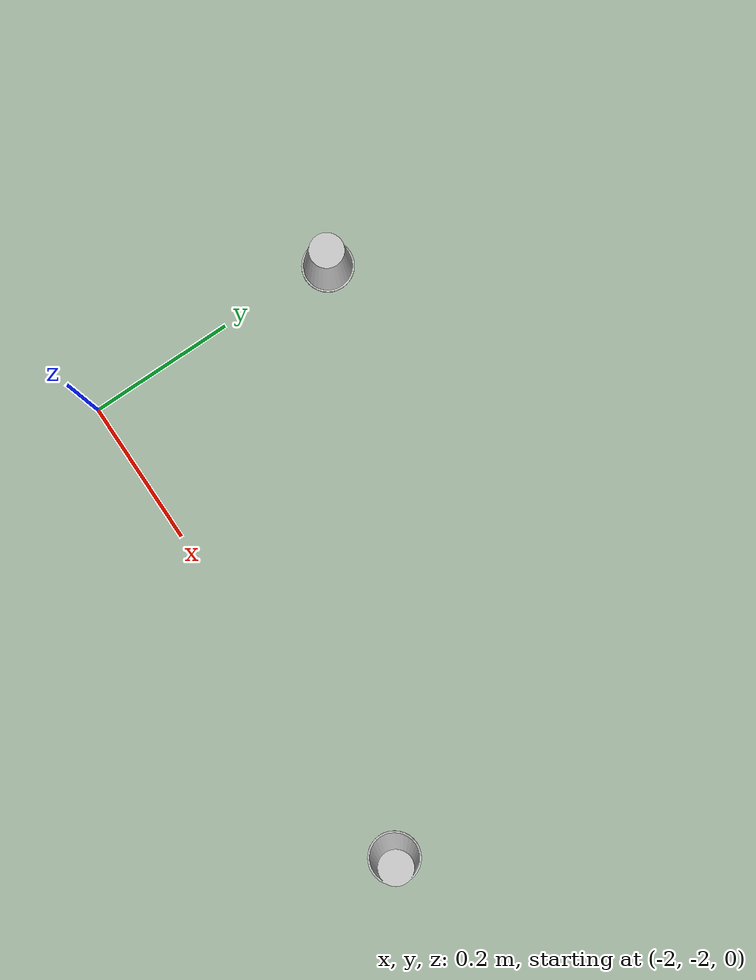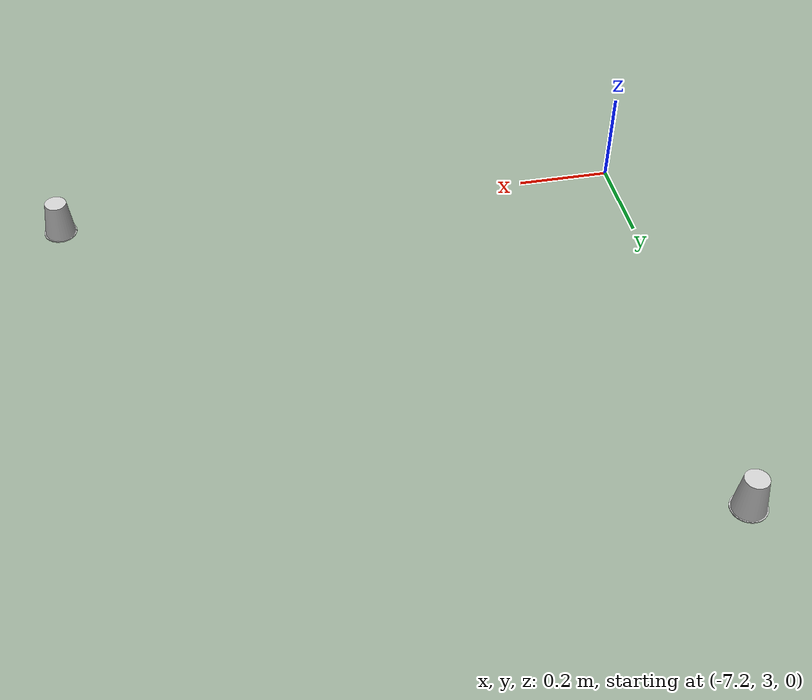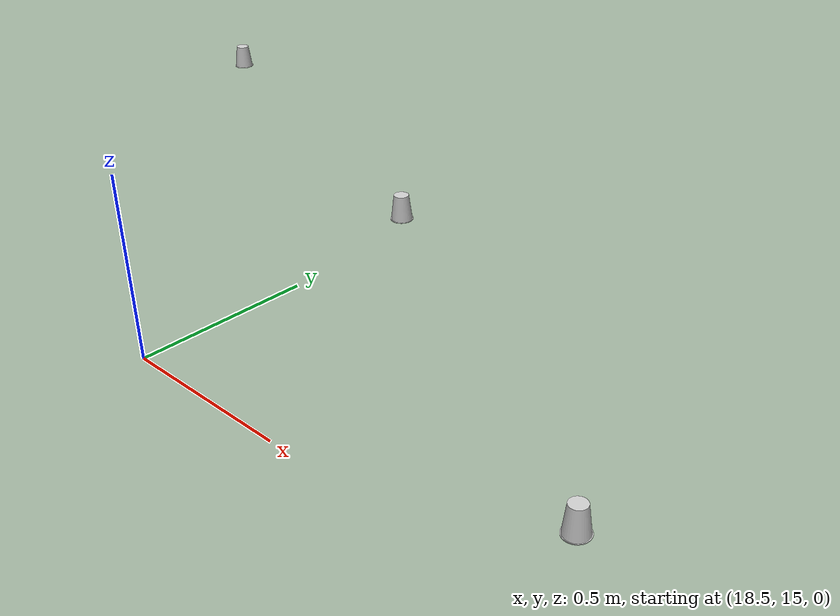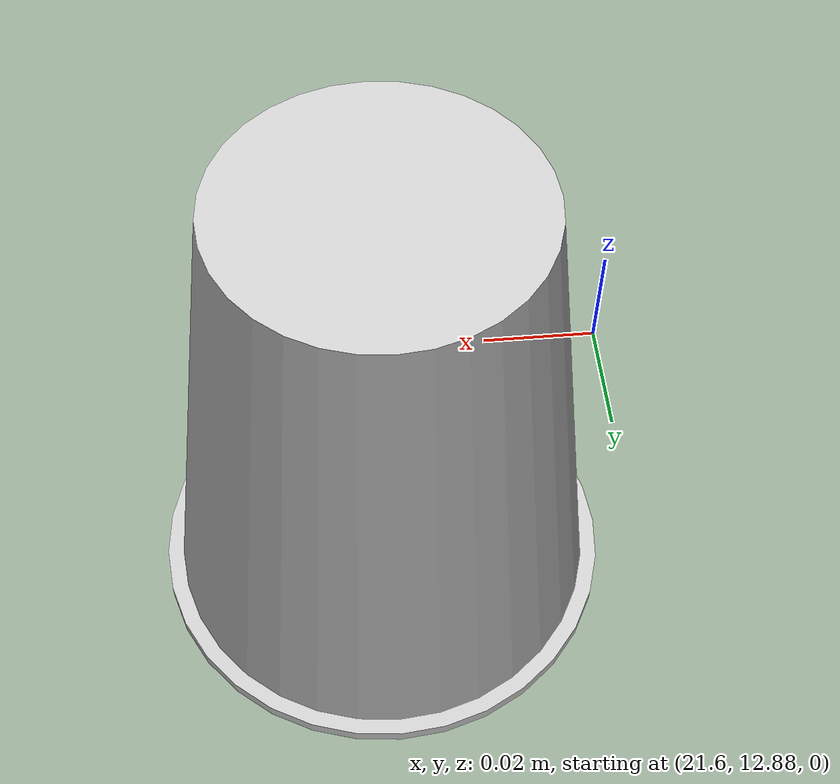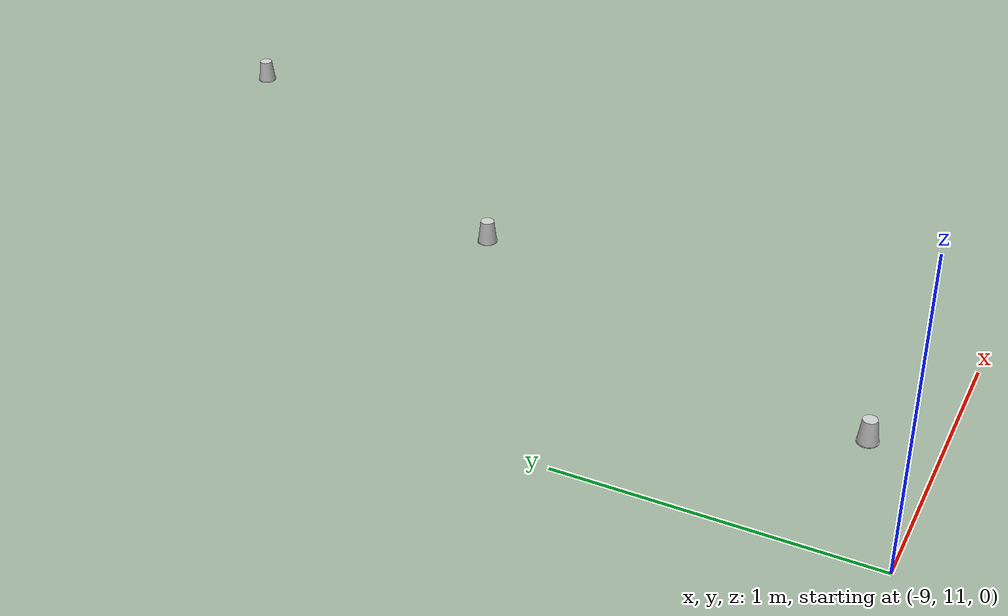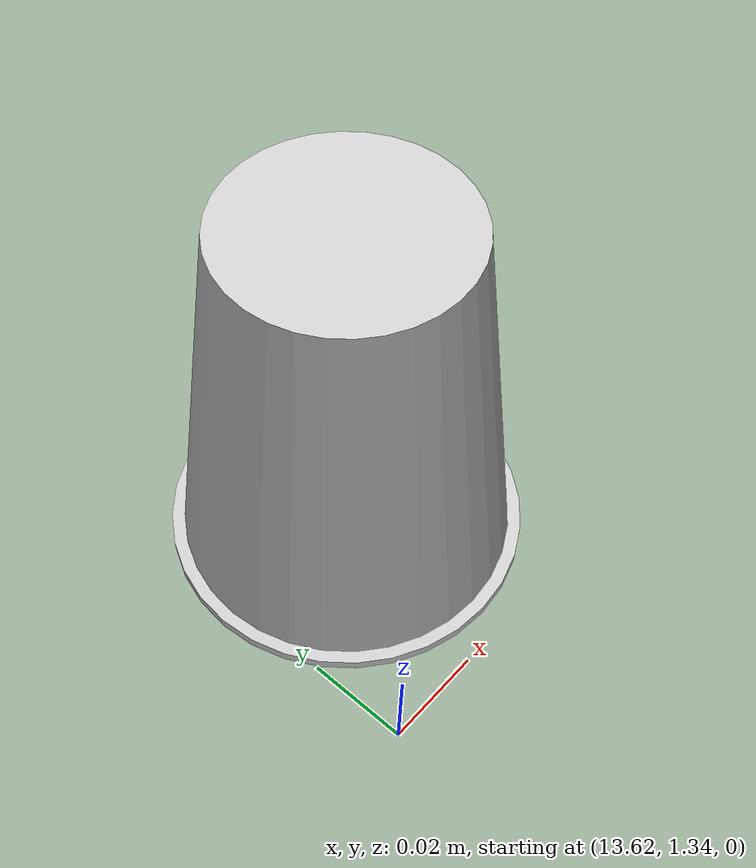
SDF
<?xml version='1.0' encoding='UTF-8'?>
<sdf version="1.4">
  <model name="some track">
    <include>
      <uri>model://cone_yellow</uri>
      <pose>2.732316099087438 -1.6082268098395642 0 0 0 0</pose>
      <name>cone_right</name>
    </include>
    <include>
      <uri>model://cone_yellow</uri>
      <pose>4.61799385589203 -1.538671655552477 0 0 0 0</pose>
      <name>cone_right</name>
    </include>
    <include>
      <uri>model://cone_yellow</uri>
      <pose>6.443519886995427 -1.4427869828499382 0 0 0 0</pose>
      <name>cone_right</name>
    </include>
    <include>
      <uri>model://cone_yellow</uri>
      <pose>8.210150073544416 -1.393966872518422 0 0 0 0</pose>
      <name>cone_right</name>
    </include>
    <include>
      <uri>model://cone_yellow</uri>
      <pose>9.934119360780318 -1.4497578378935356 0 0 0 0</pose>
      <name>cone_right</name>
    </include>
    <include>
      <uri>model://cone_yellow</uri>
      <pose>11.727403958450006 -1.5638680739180644 0 0 0 0</pose>
      <name>cone_right</name>
    </include>
    <include>
      <uri>model://cone_yellow</uri>
      <pose>13.60748776715699 -1.6204640205082175 0 0 0 0</pose>
      <name>cone_right</name>
    </include>
    <include>
      <uri>model://cone_yellow</uri>
      <pose>15.539453402479225 -1.5357385545182094 0 0 0 0</pose>
      <name>cone_right</name>
    </include>
    <include>
      <uri>model://cone_yellow</uri>
      <pose>17.530435399833866 -1.2619169136352435 0 0 0 0</pose>
      <name>cone_right</name>
    </include>
    <include>
      <uri>model://cone_yellow</uri>
      <pose>19.562384074595304 -0.7103796602996981 0 0 0 0</pose>
      <name>cone_right</name>
    </include>
    <include>
      <uri>model://cone_yellow</uri>
      <pose>21.49736322606475 0.2958273004593195 0 0 0 0</pose>
      <name>cone_right</name>
    </include>
    <include>
      <uri>model://cone_yellow</uri>
      <pose>23.081692838251918 1.9416966973204766 0 0 0 0</pose>
      <name>cone_right</name>
    </include>
    <include>
      <uri>model://cone_yellow</uri>
      <pose>24.08170293594833 3.9197398043878566 0 0 0 0</pose>
      <name>cone_right</name>
    </include>
    <include>
      <uri>model://cone_yellow</uri>
      <pose>24.705248460208693 5.925749710867697 0 0 0 0</pose>
      <name>cone_right</name>
    </include>
    <include>
      <uri>model://cone_yellow</uri>
      <pose>25.12871124697606 7.90218726287471 0 0 0 0</pose>
      <name>cone_right</name>
    </include>
    <include>
      <uri>model://cone_yellow</uri>
      <pose>25.3086620050355 9.941462223707378 0 0 0 0</pose>
      <name>cone_right</name>
    </include>
    <include>
      <uri>model://cone_yellow</uri>
      <pose>25.110698175383483 12.029873606121823 0 0 0 0</pose>
      <name>cone_right</name>
    </include>
    <include>
      <uri>model://cone_yellow</uri>
      <pose>24.402271511847562 14.095947131244623 0 0 0 0</pose>
      <name>cone_right</name>
    </include>
    <include>
      <uri>model://cone_yellow</uri>
      <pose>23.223230580551313 15.95004473230327 0 0 0 0</pose>
      <name>cone_right</name>
    </include>
    <include>
      <uri>model://cone_yellow</uri>
      <pose>21.67022268825291 17.49178669307084 0 0 0 0</pose>
      <name>cone_right</name>
    </include>
    <include>
      <uri>model://cone_yellow</uri>
      <pose>19.832788810638508 18.634591036201186 0 0 0 0</pose>
      <name>cone_right</name>
    </include>
    <include>
      <uri>model://cone_yellow</uri>
      <pose>17.879900207520055 19.380947745127905 0 0 0 0</pose>
      <name>cone_right</name>
    </include>
    <include>
      <uri>model://cone_yellow</uri>
      <pose>15.922295609393354 19.84201665686929 0 0 0 0</pose>
      <name>cone_right</name>
    </include>
    <include>
      <uri>model://cone_yellow</uri>
      <pose>13.997996933130484 20.11729524388608 0 0 0 0</pose>
      <name>cone_right</name>
    </include>
    <include>
      <uri>model://cone_yellow</uri>
      <pose>12.09440596101729 20.26215250413367 0 0 0 0</pose>
      <name>cone_right</name>
    </include>
    <include>
      <uri>model://cone_yellow</uri>
      <pose>10.21500591986238 20.318830370270213 0 0 0 0</pose>
      <name>cone_right</name>
    </include>
    <include>
      <uri>model://cone_yellow</uri>
      <pose>8.35366462284535 20.318460535894168 0 0 0 0</pose>
      <name>cone_right</name>
    </include>
    <include>
      <uri>model://cone_yellow</uri>
      <pose>6.511813116856693 20.281274157733737 0 0 0 0</pose>
      <name>cone_right</name>
    </include>
    <include>
      <uri>model://cone_yellow</uri>
      <pose>4.706630284560637 20.242070340129082 0 0 0 0</pose>
      <name>cone_right</name>
    </include>
    <include>
      <uri>model://cone_yellow</uri>
      <pose>2.9387720979610465 20.252750616458556 0 0 0 0</pose>
      <name>cone_right</name>
    </include>
    <include>
      <uri>model://cone_yellow</uri>
      <pose>1.1900751796984785 20.35901196891182 0 0 0 0</pose>
      <name>cone_right</name>
    </include>
    <include>
      <uri>model://cone_yellow</uri>
      <pose>-0.6687995920167595 20.497197759219784 0 0 0 0</pose>
      <name>cone_right</name>
    </include>
    <include>
      <uri>model://cone_yellow</uri>
      <pose>-2.679747522787795 20.446386440191652 0 0 0 0</pose>
      <name>cone_right</name>
    </include>
    <include>
      <uri>model://cone_yellow</uri>
      <pose>-4.790856026975547 19.92277081695832 0 0 0 0</pose>
      <name>cone_right</name>
    </include>
    <include>
      <uri>model://cone_yellow</uri>
      <pose>-6.724419664143166 18.880711332852957 0 0 0 0</pose>
      <name>cone_right</name>
    </include>
    <include>
      <uri>model://cone_yellow</uri>
      <pose>-8.35501283603628 17.48927114965503 0 0 0 0</pose>
      <name>cone_right</name>
    </include>
    <include>
      <uri>model://cone_yellow</uri>
      <pose>-9.666460802644998 15.850895891662953 0 0 0 0</pose>
      <name>cone_right</name>
    </include>
    <include>
      <uri>model://cone_yellow</uri>
      <pose>-10.662185716617966 14.033055356130744 0 0 0 0</pose>
      <name>cone_right</name>
    </include>
    <include>
      <uri>model://cone_yellow</uri>
      <pose>-11.348235665910954 12.084293476706252 0 0 0 0</pose>
      <name>cone_right</name>
    </include>
    <include>
      <uri>model://cone_yellow</uri>
      <pose>-11.726173905245526 10.046917587537523 0 0 0 0</pose>
      <name>cone_right</name>
    </include>
    <include>
      <uri>model://cone_yellow</uri>
      <pose>-11.794282807386946 7.960486686870102 0 0 0 0</pose>
      <name>cone_right</name>
    </include>
    <include>
      <uri>model://cone_yellow</uri>
      <pose>-11.503166128732005 5.857826355117831 0 0 0 0</pose>
      <name>cone_right</name>
    </include>
    <include>
      <uri>model://cone_yellow</uri>
      <pose>-10.736749457758219 3.8249339250042027 0 0 0 0</pose>
      <name>cone_right</name>
    </include>
    <include>
      <uri>model://cone_yellow</uri>
      <pose>-9.439350610644517 2.035163764017961 0 0 0 0</pose>
      <name>cone_right</name>
    </include>
    <include>
      <uri>model://cone_yellow</uri>
      <pose>-7.81713977285166 0.6173614654494146 0 0 0 0</pose>
      <name>cone_right</name>
    </include>
    <include>
      <uri>model://cone_yellow</uri>
      <pose>-6.033571864970987 -0.47753109475499744 0 0 0 0</pose>
      <name>cone_right</name>
    </include>
    <include>
      <uri>model://cone_yellow</uri>
      <pose>-4.092575558766301 -1.2637167560593898 0 0 0 0</pose>
      <name>cone_right</name>
    </include>
    <include>
      <uri>model://cone_yellow</uri>
      <pose>-1.9918711189744303 -1.6428459193857265 0 0 0 0</pose>
      <name>cone_right</name>
    </include>
    <include>
      <uri>model://cone_blue</uri>
      <pose>2.7290015531051304 1.3917713591240324 0 0 0 0</pose>
      <name>cone_left</name>
    </include>
    <include>
      <uri>model://cone_blue</uri>
      <pose>4.4796771377214 1.4581380623766584 0 0 0 0</pose>
      <name>cone_left</name>
    </include>
    <include>
      <uri>model://cone_blue</uri>
      <pose>6.289689598427623 1.5532664616532044 0 0 0 0</pose>
      <name>cone_left</name>
    </include>
    <include>
      <uri>model://cone_blue</uri>
      <pose>8.160187532723945 1.6056170560481322 0 0 0 0</pose>
      <name>cone_left</name>
    </include>
    <include>
      <uri>model://cone_blue</uri>
      <pose>10.076394526776458 1.5468665591807407 0 0 0 0</pose>
      <name>cone_left</name>
    </include>
    <include>
      <uri>model://cone_blue</uri>
      <pose>11.916613194130734 1.4301592915435668 0 0 0 0</pose>
      <name>cone_left</name>
    </include>
    <include>
      <uri>model://cone_blue</uri>
      <pose>13.649620571442568 1.3792401027017758 0 0 0 0</pose>
      <name>cone_left</name>
    </include>
    <include>
      <uri>model://cone_blue</uri>
      <pose>15.340969890112607 1.457688293647386 0 0 0 0</pose>
      <name>cone_left</name>
    </include>
    <include>
      <uri>model://cone_blue</uri>
      <pose>17.042270754772236 1.6980991807993553 0 0 0 0</pose>
      <name>cone_left</name>
    </include>
    <include>
      <uri>model://cone_blue</uri>
      <pose>18.64613421627315 2.1462768113686463 0 0 0 0</pose>
      <name>cone_left</name>
    </include>
    <include>
      <uri>model://cone_blue</uri>
      <pose>19.904451051702807 2.837997791352781 0 0 0 0</pose>
      <name>cone_left</name>
    </include>
    <include>
      <uri>model://cone_blue</uri>
      <pose>20.70507973883378 3.772464343875905 0 0 0 0</pose>
      <name>cone_left</name>
    </include>
    <include>
      <uri>model://cone_blue</uri>
      <pose>21.320225637181913 5.092020968783895 0 0 0 0</pose>
      <name>cone_left</name>
    </include>
    <include>
      <uri>model://cone_blue</uri>
      <pose>21.815760972003737 6.732509932685193 0 0 0 0</pose>
      <name>cone_left</name>
    </include>
    <include>
      <uri>model://cone_blue</uri>
      <pose>22.18015298068456 8.455363681645474 0 0 0 0</pose>
      <name>cone_left</name>
    </include>
    <include>
      <uri>model://cone_blue</uri>
      <pose>22.311831161139025 10.079320459118788 0 0 0 0</pose>
      <name>cone_left</name>
    </include>
    <include>
      <uri>model://cone_blue</uri>
      <pose>22.146960078651922 11.564839742858075 0 0 0 0</pose>
      <name>cone_left</name>
    </include>
    <include>
      <uri>model://cone_blue</uri>
      <pose>21.642078649618252 12.920644887862798 0 0 0 0</pose>
      <name>cone_left</name>
    </include>
    <include>
      <uri>model://cone_blue</uri>
      <pose>20.801452392478627 14.179454320103039 0 0 0 0</pose>
      <name>cone_left</name>
    </include>
    <include>
      <uri>model://cone_blue</uri>
      <pose>19.698272794952363 15.230943129638828 0 0 0 0</pose>
      <name>cone_left</name>
    </include>
    <include>
      <uri>model://cone_blue</uri>
      <pose>18.412834718538125 15.991916183646039 0 0 0 0</pose>
      <name>cone_left</name>
    </include>
    <include>
      <uri>model://cone_blue</uri>
      <pose>16.937389157741418 16.53284786607781 0 0 0 0</pose>
      <name>cone_left</name>
    </include>
    <include>
      <uri>model://cone_blue</uri>
      <pose>15.319062077946347 16.903290860450376 0 0 0 0</pose>
      <name>cone_left</name>
    </include>
    <include>
      <uri>model://cone_blue</uri>
      <pose>13.633381969508417 17.13953502380407 0 0 0 0</pose>
      <name>cone_left</name>
    </include>
    <include>
      <uri>model://cone_blue</uri>
      <pose>11.910594909210683 17.267788882721977 0 0 0 0</pose>
      <name>cone_left</name>
    </include>
    <include>
      <uri>model://cone_blue</uri>
      <pose>10.152473129111831 17.31948216606301 0 0 0 0</pose>
      <name>cone_left</name>
    </include>
    <include>
      <uri>model://cone_blue</uri>
      <pose>8.373511294900837 17.31852618501108 0 0 0 0</pose>
      <name>cone_left</name>
    </include>
    <include>
      <uri>model://cone_blue</uri>
      <pose>6.5833341209581615 17.282126821244194 0 0 0 0</pose>
      <name>cone_left</name>
    </include>
    <include>
      <uri>model://cone_blue</uri>
      <pose>4.762193020901099 17.24258492053952 0 0 0 0</pose>
      <name>cone_left</name>
    </include>
    <include>
      <uri>model://cone_blue</uri>
      <pose>2.889671270594656 17.253152458579414 0 0 0 0</pose>
      <name>cone_left</name>
    </include>
    <include>
      <uri>model://cone_blue</uri>
      <pose>0.9645094473609332 17.367503971196445 0 0 0 0</pose>
      <name>cone_left</name>
    </include>
    <include>
      <uri>model://cone_blue</uri>
      <pose>-0.8607578002887888 17.503345383721456 0 0 0 0</pose>
      <name>cone_left</name>
    </include>
    <include>
      <uri>model://cone_blue</uri>
      <pose>-2.472038744943668 17.453585567496226 0 0 0 0</pose>
      <name>cone_left</name>
    </include>
    <include>
      <uri>model://cone_blue</uri>
      <pose>-3.8438830712781034 17.076151379594478 0 0 0 0</pose>
      <name>cone_left</name>
    </include>
    <include>
      <uri>model://cone_blue</uri>
      <pose>-5.127983782373299 16.340752184481143 0 0 0 0</pose>
      <name>cone_left</name>
    </include>
    <include>
      <uri>model://cone_blue</uri>
      <pose>-6.282058111742325 15.320663598476767 0 0 0 0</pose>
      <name>cone_left</name>
    </include>
    <include>
      <uri>model://cone_blue</uri>
      <pose>-7.231289700903332 14.098770980236177 0 0 0 0</pose>
      <name>cone_left</name>
    </include>
    <include>
      <uri>model://cone_blue</uri>
      <pose>-7.966452185329882 12.71661290456323 0 0 0 0</pose>
      <name>cone_left</name>
    </include>
    <include>
      <uri>model://cone_blue</uri>
      <pose>-8.477286804770797 11.213861034343237 0 0 0 0</pose>
      <name>cone_left</name>
    </include>
    <include>
      <uri>model://cone_blue</uri>
      <pose>-8.756086163790313 9.624331728737838 0 0 0 0</pose>
      <name>cone_left</name>
    </include>
    <include>
      <uri>model://cone_blue</uri>
      <pose>-8.794413743147015 7.988515197644906 0 0 0 0</pose>
      <name>cone_left</name>
    </include>
    <include>
      <uri>model://cone_blue</uri>
      <pose>-8.558378626328963 6.430736963931166 0 0 0 0</pose>
      <name>cone_left</name>
    </include>
    <include>
      <uri>model://cone_blue</uri>
      <pose>-8.01648949124818 5.089918397083922 0 0 0 0</pose>
      <name>cone_left</name>
    </include>
    <include>
      <uri>model://cone_blue</uri>
      <pose>-7.151629217738279 3.9758674581555122 0 0 0 0</pose>
      <name>cone_left</name>
    </include>
    <include>
      <uri>model://cone_blue</uri>
      <pose>-5.9687754402705595 2.9803149762155536 0 0 0 0</pose>
      <name>cone_left</name>
    </include>
    <include>
      <uri>model://cone_blue</uri>
      <pose>-4.572800925212467 2.142802521706275 0 0 0 0</pose>
      <name>cone_left</name>
    </include>
    <include>
      <uri>model://cone_blue</uri>
      <pose>-3.1120450933863903 1.5715186850392602 0 0 0 0</pose>
      <name>cone_left</name>
    </include>
    <include>
      <uri>model://cone_blue</uri>
      <pose>-1.6556609294876268 1.3382550028383515 0 0 0 0</pose>
      <name>cone_left</name>
    </include>
    <include>
      <uri>model://cone_orange_big</uri>
      <pose>-1.3 2.0 0 0 0 0</pose>
      <name>cone_orange_big</name>
    </include>
    <include>
      <uri>model://cone_orange_big</uri>
      <pose>-1.3 -2.0 0 0 0 0</pose>
      <name>cone_orange_big</name>
    </include>
    <include>
      <uri>model://cone_orange_big</uri>
      <pose>1.3 2.0 0 0 0 0</pose>
      <name>cone_orange_big</name>
    </include>
    <include>
      <uri>model://cone_orange_big</uri>
      <pose>1.3 -2.0 0 0 0 0</pose>
      <name>cone_orange_big</name>
    </include>
  </model>
</sdf>

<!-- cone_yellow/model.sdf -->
<sdf version='1.4'>
  <model name="cone_yellow">
    <link name="link">
    <collision name="collision"><geometry><box><size> 0.05 0.05 0.01</size>
             </box></geometry></collision>
      <visual name="visual">
        <geometry>
          <mesh>
            <uri>model://cup.dae</uri>
            <scale>1 1 1</scale>
          </mesh>
        </geometry>
        <material>
            <script>
              <uri>model://cone_yellow/materials/scripts</uri>
              <uri>model://cone_yellow/materials/textures</uri>
              <name>cone_yellow/Image</name>
            </script>
        </material>
      </visual>
    </link>
  </model>
</sdf>

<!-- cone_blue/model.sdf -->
<sdf version='1.4'>
  <model name="cone_blue">
    <link name="link">
    <collision name="collision"><geometry><box><size> 0.05 0.05 0.01</size>
             </box></geometry></collision>
      <visual name="visual">
        <geometry>
          <mesh>
            <uri>model://cup.dae</uri>
            <scale>1 1 1</scale>
          </mesh>
        </geometry>
        <material>
            <script>
              <uri>model://cone_blue/materials/scripts</uri>
              <uri>model://cone_blue/materials/textures</uri>
              <name>cone_blue/Image</name>
            </script>
        </material>
      </visual>
    </link>
  </model>
</sdf>

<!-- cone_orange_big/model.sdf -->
<sdf version='1.4'>
  <model name="cone_orange_big">
    <link name="link">
    <collision name="collision"><geometry><box><size> 0.05 0.05 0.01</size>
             </box></geometry></collision>
      <visual name="visual">
        <geometry>
          <mesh>
            <uri>model://cup.dae</uri>
            <scale>1 1 1</scale>
          </mesh>
        </geometry>
        <material>
            <script>
              <uri>model://cone_orange_big/materials/scripts</uri>
              <uri>model://cone_orange_big/materials/textures</uri>
              <name>cone_orange_big/Image</name>
            </script>
        </material>
      </visual>
    </link>
  </model>
</sdf>
